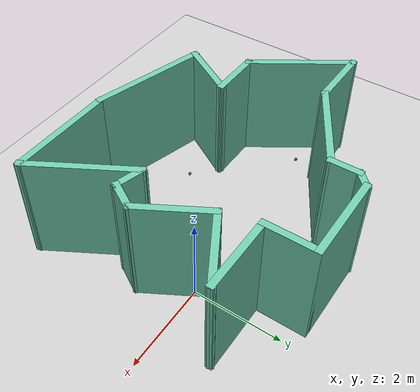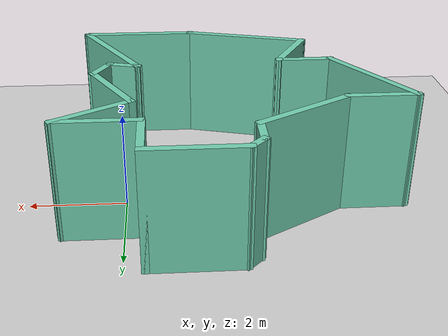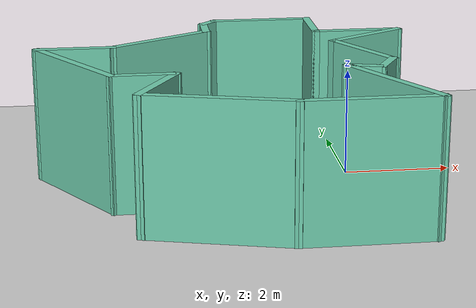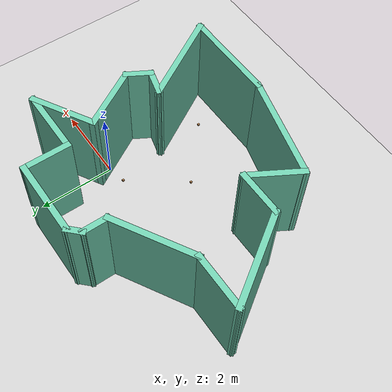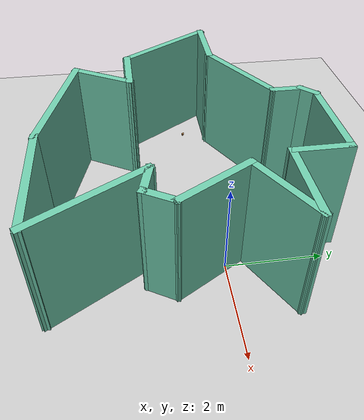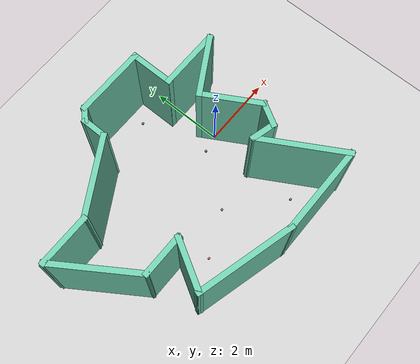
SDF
<sdf version="1.7">
 <world name="default">
  <model name="ground_plane">
   <static>1</static>
   <link name="link">
    <collision name="collision">
     <geometry><plane><normal>0 0 1</normal><size>100 100</size></plane></geometry>
     <surface>
      <contact><collide_bitmask>65535</collide_bitmask></contact>
      <friction><ode><mu>100</mu><mu2>50</mu2></ode></friction>
     </surface>
    </collision>
    <visual name="visual">
     <cast_shadows>0</cast_shadows>
     <geometry><plane><normal>0 0 1</normal><size>100 100</size></plane></geometry>
     <material>
      <script><uri>file://media/materials/scripts/gazebo.material</uri><name>Gazebo/Grey</name></script>
     </material>
    </visual>
   </link>
  </model>
  <light name="sun" type="directional">
   <pose>0 0 10 0 -0 0</pose>
   <diffuse>0.8 0.8 0.8 1</diffuse>
   <specular>0.2 0.2 0.2 1</specular>
   <attenuation>
    <range>1000</range>
    <constant>0.9</constant>
    <linear>0.01</linear>
    <quadratic>0.001</quadratic>
   </attenuation>
   <direction>-0.5 0.1 -0.9</direction>
   <spot><inner_angle>0</inner_angle><outer_angle>0</outer_angle><falloff>0</falloff></spot>
  </light>
  <scene><shadows>0</shadows><ambient>0.4 0.4 0.4 1</ambient><background>0.7 0.7 0.7 1</background></scene>
  <physics type="ode">
   <real_time_update_rate>1000</real_time_update_rate>
   <max_step_size>0.001</max_step_size>
   <real_time_factor>1</real_time_factor>
   <ode>
    <solver>
     <type>quick</type>
     <iters>150</iters>
     <precon_iters>0</precon_iters>
     <sor>1.4</sor>
     <use_dynamic_moi_rescaling>1</use_dynamic_moi_rescaling>
    </solver>
    <constraints>
     <cfm>1e-05</cfm>
     <erp>0.2</erp>
     <contact_max_correcting_vel>2000</contact_max_correcting_vel>
     <contact_surface_layer>0.01</contact_surface_layer>
    </constraints>
   </ode>
  </physics>
  <gravity>0 0 -9.8</gravity>
  <magnetic_field>6e-06 2.3e-05 -4.2e-05</magnetic_field>
  <atmosphere type="adiabatic"/>
  <audio><device>default</device></audio>
  <spherical_coordinates>
   <surface_model>EARTH_WGS84</surface_model>
   <latitude_deg>0</latitude_deg>
   <longitude_deg>0</longitude_deg>
   <elevation>0</elevation>
   <heading_deg>0</heading_deg>
  </spherical_coordinates>
  <model name="new_world">
   <pose>-2.24479 -0.449247 0 0 -0 0</pose>
   <link name="Wall_0">
    <collision name="Wall_0_Collision">
     <geometry><box><size>1.5 0.15 2.5</size></box></geometry>
     <pose>0 0 1.25 0 -0 0</pose>
    </collision>
    <visual name="Wall_0_Visual">
     <pose>0 0 1.25 0 -0 0</pose>
     <geometry><box><size>1.5 0.15 2.5</size></box></geometry>
     <material>
      <script><uri>file://media/materials/scripts/gazebo.material</uri><name>Gazebo/Grey</name></script>
      <ambient>0.435294 0.796078 0.67451 1</ambient>
     </material>
     <meta><layer>0</layer></meta>
    </visual>
    <pose>-2.75732 0.825044 0 0 -0 0</pose>
   </link>
   <link name="Wall_11">
    <collision name="Wall_11_Collision">
     <geometry><box><size>2.25 0.15 2.5</size></box></geometry>
     <pose>0 0 1.25 0 -0 0</pose>
    </collision>
    <visual name="Wall_11_Visual">
     <pose>0 0 1.25 0 -0 0</pose>
     <geometry><box><size>2.25 0.15 2.5</size></box></geometry>
     <material>
      <script><uri>file://media/materials/scripts/gazebo.material</uri><name>Gazebo/Grey</name></script>
      <ambient>0.435294 0.796078 0.67451 1</ambient>
     </material>
     <meta><layer>0</layer></meta>
    </visual>
    <pose>-1.173 1.35004 0 0 -0 0.523599</pose>
   </link>
   <link name="Wall_12">
    <collision name="Wall_12_Collision">
     <geometry><box><size>0.75 0.15 2.5</size></box></geometry>
     <pose>0 0 1.25 0 -0 0</pose>
    </collision>
    <visual name="Wall_12_Visual">
     <pose>0 0 1.25 0 -0 0</pose>
     <geometry><box><size>0.75 0.15 2.5</size></box></geometry>
     <material>
      <script><uri>file://media/materials/scripts/gazebo.material</uri><name>Gazebo/Grey</name></script>
      <ambient>0.435294 0.796078 0.67451 1</ambient>
     </material>
     <meta><layer>0</layer></meta>
    </visual>
    <pose>-0.263668 2.17504 0 0 -0 1.5708</pose>
   </link>
   <link name="Wall_13">
    <collision name="Wall_13_Collision">
     <geometry><box><size>0.5 0.15 2.5</size></box></geometry>
     <pose>0 0 1.25 0 -0 0</pose>
    </collision>
    <visual name="Wall_13_Visual">
     <pose>0 0 1.25 0 -0 0</pose>
     <geometry><box><size>0.5 0.15 2.5</size></box></geometry>
     <material>
      <script><uri>file://media/materials/scripts/gazebo.material</uri><name>Gazebo/Grey</name></script>
      <ambient>0.435294 0.796078 0.67451 1</ambient>
     </material>
     <meta><layer>0</layer></meta>
    </visual>
    <pose>-0.139924 2.59879 0 0 -0 0.785398</pose>
   </link>
   <link name="Wall_14">
    <collision name="Wall_14_Collision">
     <geometry><box><size>2 0.15 2.5</size></box></geometry>
     <pose>0 0 1.25 0 -0 0</pose>
    </collision>
    <visual name="Wall_14_Visual">
     <pose>0 0 1.25 0 -0 0</pose>
     <geometry><box><size>2 0.15 2.5</size></box></geometry>
     <material>
      <script><uri>file://media/materials/scripts/gazebo.material</uri><name>Gazebo/Grey</name></script>
      <ambient>0.435294 0.796078 0.67451 1</ambient>
     </material>
     <meta><layer>0</layer></meta>
    </visual>
    <pose>0.908819 2.72253 0 0 -0 0</pose>
   </link>
   <link name="Wall_15">
    <collision name="Wall_15_Collision">
     <geometry><box><size>1.25 0.15 2.5</size></box></geometry>
     <pose>0 0 1.25 0 -0 0</pose>
    </collision>
    <visual name="Wall_15_Visual">
     <pose>0 0 1.25 0 -0 0</pose>
     <geometry><box><size>1.25 0.15 2.5</size></box></geometry>
     <material>
      <script><uri>file://media/materials/scripts/gazebo.material</uri><name>Gazebo/Grey</name></script>
      <ambient>0.435294 0.796078 0.67451 1</ambient>
     </material>
     <meta><layer>0</layer></meta>
    </visual>
    <pose>1.83382 2.17253 0 0 -0 -1.5708</pose>
   </link>
   <link name="Wall_16">
    <collision name="Wall_16_Collision">
     <geometry><box><size>1.75 0.15 2.5</size></box></geometry>
     <pose>0 0 1.25 0 -0 0</pose>
    </collision>
    <visual name="Wall_16_Visual">
     <pose>0 0 1.25 0 -0 0</pose>
     <geometry><box><size>1.75 0.15 2.5</size></box></geometry>
     <material>
      <script><uri>file://media/materials/scripts/gazebo.material</uri><name>Gazebo/Grey</name></script>
      <ambient>0.435294 0.796078 0.67451 1</ambient>
     </material>
     <meta><layer>0</layer></meta>
    </visual>
    <pose>2.63382 1.62253 0 0 -0 0</pose>
   </link>
   <link name="Wall_17">
    <collision name="Wall_17_Collision">
     <geometry><box><size>1.75 0.15 2.5</size></box></geometry>
     <pose>0 0 1.25 0 -0 0</pose>
    </collision>
    <visual name="Wall_17_Visual">
     <pose>0 0 1.25 0 -0 0</pose>
     <geometry><box><size>1.75 0.15 2.5</size></box></geometry>
     <material>
      <script><uri>file://media/materials/scripts/gazebo.material</uri><name>Gazebo/Grey</name></script>
      <ambient>0.435294 0.796078 0.67451 1</ambient>
     </material>
     <meta><layer>0</layer></meta>
    </visual>
    <pose>2.741 1.22253 0 0 -0 -2.61799</pose>
   </link>
   <link name="Wall_18">
    <collision name="Wall_18_Collision">
     <geometry><box><size>1.75 0.15 2.5</size></box></geometry>
     <pose>0 0 1.25 0 -0 0</pose>
    </collision>
    <visual name="Wall_18_Visual">
     <pose>0 0 1.25 0 -0 0</pose>
     <geometry><box><size>1.75 0.15 2.5</size></box></geometry>
     <material>
      <script><uri>file://media/materials/scripts/gazebo.material</uri><name>Gazebo/Grey</name></script>
      <ambient>0.435294 0.796078 0.67451 1</ambient>
     </material>
     <meta><layer>0</layer></meta>
    </visual>
    <pose>2.44818 0.129711 0 0 -0 -1.0472</pose>
   </link>
   <link name="Wall_19">
    <collision name="Wall_19_Collision">
     <geometry><box><size>0.75 0.15 2.5</size></box></geometry>
     <pose>0 0 1.25 0 -0 0</pose>
    </collision>
    <visual name="Wall_19_Visual">
     <pose>0 0 1.25 0 -0 0</pose>
     <geometry><box><size>0.75 0.15 2.5</size></box></geometry>
     <material>
      <script><uri>file://media/materials/scripts/gazebo.material</uri><name>Gazebo/Grey</name></script>
      <ambient>0.435294 0.796078 0.67451 1</ambient>
     </material>
     <meta><layer>0</layer></meta>
    </visual>
    <pose>2.69818 -0.822917 0 0 -0 -2.0944</pose>
   </link>
   <link name="Wall_20">
    <collision name="Wall_20_Collision">
     <geometry><box><size>0.75 0.15 2.5</size></box></geometry>
     <pose>0 0 1.25 0 -0 0</pose>
    </collision>
    <visual name="Wall_20_Visual">
     <pose>0 0 1.25 0 -0 0</pose>
     <geometry><box><size>0.75 0.15 2.5</size></box></geometry>
     <material>
      <script><uri>file://media/materials/scripts/gazebo.material</uri><name>Gazebo/Grey</name></script>
      <ambient>0.435294 0.796078 0.67451 1</ambient>
     </material>
     <meta><layer>0</layer></meta>
    </visual>
    <pose>2.2584 -1.00508 0 0 -0 2.87979</pose>
   </link>
   <link name="Wall_21">
    <collision name="Wall_21_Collision">
     <geometry><box><size>2.5 0.15 2.5</size></box></geometry>
     <pose>0 0 1.25 0 -0 0</pose>
    </collision>
    <visual name="Wall_21_Visual">
     <pose>0 0 1.25 0 -0 0</pose>
     <geometry><box><size>2.5 0.15 2.5</size></box></geometry>
     <material>
      <script><uri>file://media/materials/scripts/gazebo.material</uri><name>Gazebo/Grey</name></script>
      <ambient>0.435294 0.796078 0.67451 1</ambient>
     </material>
     <meta><layer>0</layer></meta>
    </visual>
    <pose>2.55612 -1.94501 0 0 -0 -1.0472</pose>
   </link>
   <link name="Wall_22">
    <collision name="Wall_22_Collision">
     <geometry><box><size>2.5 0.15 2.5</size></box></geometry>
     <pose>0 0 1.25 0 -0 0</pose>
    </collision>
    <visual name="Wall_22_Visual">
     <pose>0 0 1.25 0 -0 0</pose>
     <geometry><box><size>2.5 0.15 2.5</size></box></geometry>
     <material>
      <script><uri>file://media/materials/scripts/gazebo.material</uri><name>Gazebo/Grey</name></script>
      <ambient>0.435294 0.796078 0.67451 1</ambient>
     </material>
     <meta><layer>0</layer></meta>
    </visual>
    <pose>1.96862 -2.96259 0 0 -0 3.14159</pose>
   </link>
   <link name="Wall_23">
    <collision name="Wall_23_Collision">
     <geometry><box><size>2.75 0.15 2.5</size></box></geometry>
     <pose>0 0 1.25 0 -0 0</pose>
    </collision>
    <visual name="Wall_23_Visual">
     <pose>0 0 1.25 0 -0 0</pose>
     <geometry><box><size>2.75 0.15 2.5</size></box></geometry>
     <material>
      <script><uri>file://media/materials/scripts/gazebo.material</uri><name>Gazebo/Grey</name></script>
      <ambient>0.435294 0.796078 0.67451 1</ambient>
     </material>
     <meta><layer>0</layer></meta>
    </visual>
    <pose>-0.46208 -2.62613 0 0 -0 2.87979</pose>
   </link>
   <link name="Wall_24">
    <collision name="Wall_24_Collision">
     <geometry><box><size>1.5 0.15 2.5</size></box></geometry>
     <pose>0 0 1.25 0 -0 0</pose>
    </collision>
    <visual name="Wall_24_Visual">
     <pose>0 0 1.25 0 -0 0</pose>
     <geometry><box><size>1.5 0.15 2.5</size></box></geometry>
     <material>
      <script><uri>file://media/materials/scripts/gazebo.material</uri><name>Gazebo/Grey</name></script>
      <ambient>0.435294 0.796078 0.67451 1</ambient>
     </material>
     <meta><layer>0</layer></meta>
    </visual>
    <pose>-1.38028 -1.7051 0 0 -0 1.0472</pose>
   </link>
   <link name="Wall_25">
    <collision name="Wall_25_Collision">
     <geometry><box><size>1.25 0.15 2.5</size></box></geometry>
     <pose>0 0 1.25 0 -0 0</pose>
    </collision>
    <visual name="Wall_25_Visual">
     <pose>0 0 1.25 0 -0 0</pose>
     <geometry><box><size>1.25 0.15 2.5</size></box></geometry>
     <material>
      <script><uri>file://media/materials/scripts/gazebo.material</uri><name>Gazebo/Grey</name></script>
      <ambient>0.435294 0.796078 0.67451 1</ambient>
     </material>
     <meta><layer>0</layer></meta>
    </visual>
    <pose>-1.59278 -1.12053 0 0 -0 3.14159</pose>
   </link>
   <link name="Wall_26">
    <collision name="Wall_26_Collision">
     <geometry><box><size>2.48413 0.15 2.5</size></box></geometry>
     <pose>0 0 1.25 0 -0 0</pose>
    </collision>
    <visual name="Wall_26_Visual">
     <pose>0 0 1.25 0 -0 0</pose>
     <geometry><box><size>2.48413 0.15 2.5</size></box></geometry>
     <material>
      <script><uri>file://media/materials/scripts/gazebo.material</uri><name>Gazebo/Grey</name></script>
      <ambient>0.435294 0.796078 0.67451 1</ambient>
     </material>
     <meta><layer>0</layer></meta>
    </visual>
    <pose>-2.78755 -0.147742 0 0 -0 2.15612</pose>
   </link>
   <static>1</static>
  </model>
  <model name="wood_cube_5cm">
   <link name="link">
    <pose>0 0 0.025 0 -0 0</pose>
    <inertial>
     <mass>0.0565</mass>
     <inertia>
      <ixx>2.35417e-05</ixx>
      <ixy>0</ixy>
      <ixz>0</ixz>
      <iyy>2.35417e-05</iyy>
      <iyz>0</iyz>
      <izz>2.35417e-05</izz>
     </inertia>
    </inertial>
    <collision name="collision">
     <geometry><box><size>0.05 0.05 0.05</size></box></geometry>
     <surface>
      <contact>
       <poissons_ratio>0.347</poissons_ratio>
       <elastic_modulus>8.8e+09</elastic_modulus>
       <ode><kp>100000</kp><kd>1</kd><max_vel>1</max_vel><min_depth>0.001</min_depth></ode>
      </contact>
      <friction>
       <torsional>
        <coefficient>1</coefficient>
        <use_patch_radius>0</use_patch_radius>
        <surface_radius>0.05</surface_radius>
       </torsional>
      </friction>
     </surface>
    </collision>
    <visual name="visual">
     <geometry><box><size>0.05 0.05 0.05</size></box></geometry>
     <material>
      <script><uri>file://media/materials/scripts/gazebo.material</uri><name>Gazebo/Wood</name></script>
     </material>
    </visual>
   </link>
   <pose>-4.63302 -0.218968 -0.001001 -0 -0 -0</pose>
  </model>
  <model name="wood_cube_5cm_0">
   <link name="link">
    <pose>0 0 0.025 0 -0 0</pose>
    <inertial>
     <mass>0.0565</mass>
     <inertia>
      <ixx>2.35417e-05</ixx>
      <ixy>0</ixy>
      <ixz>0</ixz>
      <iyy>2.35417e-05</iyy>
      <iyz>0</iyz>
      <izz>2.35417e-05</izz>
     </inertia>
    </inertial>
    <collision name="collision">
     <geometry><box><size>0.05 0.05 0.05</size></box></geometry>
     <surface>
      <contact>
       <poissons_ratio>0.347</poissons_ratio>
       <elastic_modulus>8.8e+09</elastic_modulus>
       <ode><kp>100000</kp><kd>1</kd><max_vel>1</max_vel><min_depth>0.001</min_depth></ode>
      </contact>
      <friction>
       <torsional>
        <coefficient>1</coefficient>
        <use_patch_radius>0</use_patch_radius>
        <surface_radius>0.05</surface_radius>
       </torsional>
      </friction>
     </surface>
    </collision>
    <visual name="visual">
     <geometry><box><size>0.05 0.05 0.05</size></box></geometry>
     <material>
      <script><uri>file://media/materials/scripts/gazebo.material</uri><name>Gazebo/Wood</name></script>
     </material>
    </visual>
   </link>
   <pose>-0.949655 1.79659 -0.001001 -0 -0 -0</pose>
  </model>
  <model name="wood_cube_5cm_1">
   <link name="link">
    <pose>0 0 0.025 0 -0 0</pose>
    <inertial>
     <mass>0.0565</mass>
     <inertia>
      <ixx>2.35417e-05</ixx>
      <ixy>0</ixy>
      <ixz>0</ixz>
      <iyy>2.35417e-05</iyy>
      <iyz>0</iyz>
      <izz>2.35417e-05</izz>
     </inertia>
    </inertial>
    <collision name="collision">
     <geometry><box><size>0.05 0.05 0.05</size></box></geometry>
     <surface>
      <contact>
       <poissons_ratio>0.347</poissons_ratio>
       <elastic_modulus>8.8e+09</elastic_modulus>
       <ode><kp>100000</kp><kd>1</kd><max_vel>1</max_vel><min_depth>0.001</min_depth></ode>
      </contact>
      <friction>
       <torsional>
        <coefficient>1</coefficient>
        <use_patch_radius>0</use_patch_radius>
        <surface_radius>0.05</surface_radius>
       </torsional>
      </friction>
     </surface>
    </collision>
    <visual name="visual">
     <geometry><box><size>0.05 0.05 0.05</size></box></geometry>
     <material>
      <script><uri>file://media/materials/scripts/gazebo.material</uri><name>Gazebo/Wood</name></script>
     </material>
    </visual>
   </link>
   <pose>-0.471758 -0.090822 -0.001001 -0 -0 -0</pose>
  </model>
  <model name="wood_cube_5cm_2">
   <link name="link">
    <pose>0 0 0.025 0 -0 0</pose>
    <inertial>
     <mass>0.0565</mass>
     <inertia>
      <ixx>2.35417e-05</ixx>
      <ixy>0</ixy>
      <ixz>0</ixz>
      <iyy>2.35417e-05</iyy>
      <iyz>0</iyz>
      <izz>2.35417e-05</izz>
     </inertia>
    </inertial>
    <collision name="collision">
     <geometry><box><size>0.05 0.05 0.05</size></box></geometry>
     <surface>
      <contact>
       <poissons_ratio>0.347</poissons_ratio>
       <elastic_modulus>8.8e+09</elastic_modulus>
       <ode><kp>100000</kp><kd>1</kd><max_vel>1</max_vel><min_depth>0.001</min_depth></ode>
      </contact>
      <friction>
       <torsional>
        <coefficient>1</coefficient>
        <use_patch_radius>0</use_patch_radius>
        <surface_radius>0.05</surface_radius>
       </torsional>
      </friction>
     </surface>
    </collision>
    <visual name="visual">
     <geometry><box><size>0.05 0.05 0.05</size></box></geometry>
     <material>
      <script><uri>file://media/materials/scripts/gazebo.material</uri><name>Gazebo/Wood</name></script>
     </material>
    </visual>
   </link>
   <pose>-2.75544 -2.06879 -0.001001 -0 -0 -0</pose>
  </model>
  <model name="wood_cube_5cm_3">
   <link name="link">
    <pose>0 0 0.025 0 -0 0</pose>
    <inertial>
     <mass>0.0565</mass>
     <inertia>
      <ixx>2.35417e-05</ixx>
      <ixy>0</ixy>
      <ixz>0</ixz>
      <iyy>2.35417e-05</iyy>
      <iyz>0</iyz>
      <izz>2.35417e-05</izz>
     </inertia>
    </inertial>
    <collision name="collision">
     <geometry><box><size>0.05 0.05 0.05</size></box></geometry>
     <surface>
      <contact>
       <poissons_ratio>0.347</poissons_ratio>
       <elastic_modulus>8.8e+09</elastic_modulus>
       <ode><kp>100000</kp><kd>1</kd><max_vel>1</max_vel><min_depth>0.001</min_depth></ode>
      </contact>
      <friction>
       <torsional>
        <coefficient>1</coefficient>
        <use_patch_radius>0</use_patch_radius>
        <surface_radius>0.05</surface_radius>
       </torsional>
      </friction>
     </surface>
    </collision>
    <visual name="visual">
     <geometry><box><size>0.05 0.05 0.05</size></box></geometry>
     <material>
      <script><uri>file://media/materials/scripts/gazebo.material</uri><name>Gazebo/Wood</name></script>
     </material>
    </visual>
   </link>
   <pose>-0.105008 -2.72981 -0.001001 -0 -0 -0</pose>
  </model>
  <model name="wood_cube_5cm_4">
   <link name="link">
    <pose>0 0 0.025 0 -0 0</pose>
    <inertial>
     <mass>0.0565</mass>
     <inertia>
      <ixx>2.35417e-05</ixx>
      <ixy>0</ixy>
      <ixz>0</ixz>
      <iyy>2.35417e-05</iyy>
      <iyz>0</iyz>
      <izz>2.35417e-05</izz>
     </inertia>
    </inertial>
    <collision name="collision">
     <geometry><box><size>0.05 0.05 0.05</size></box></geometry>
     <surface>
      <contact>
       <poissons_ratio>0.347</poissons_ratio>
       <elastic_modulus>8.8e+09</elastic_modulus>
       <ode><kp>100000</kp><kd>1</kd><max_vel>1</max_vel><min_depth>0.001</min_depth></ode>
      </contact>
      <friction>
       <torsional>
        <coefficient>1</coefficient>
        <use_patch_radius>0</use_patch_radius>
        <surface_radius>0.05</surface_radius>
       </torsional>
      </friction>
     </surface>
    </collision>
    <visual name="visual">
     <geometry><box><size>0.05 0.05 0.05</size></box></geometry>
     <material>
      <script><uri>file://media/materials/scripts/gazebo.material</uri><name>Gazebo/Wood</name></script>
     </material>
    </visual>
   </link>
   <pose>-1.50358 -1.49192 -0.001001 -0 -0 -0</pose>
  </model>
  <light name="user_point_light_0" type="point">
   <pose>-1.96704 -0.467863 1 0 -0 0</pose>
   <diffuse>0.5 0.5 0.5 1</diffuse>
   <specular>0.1 0.1 0.1 1</specular>
   <attenuation>
    <range>20</range>
    <constant>0.5</constant>
    <linear>0.01</linear>
    <quadratic>0.001</quadratic>
   </attenuation>
   <cast_shadows>0</cast_shadows>
   <direction>0 0 -1</direction>
  </light>
  <plugin name="gazebo_link_attacher" filename="libgazebo_link_attacher.so"/>
  <plugin name="gazebo_ros_state" filename="libgazebo_ros_state.so"/>
 </world>
</sdf>
